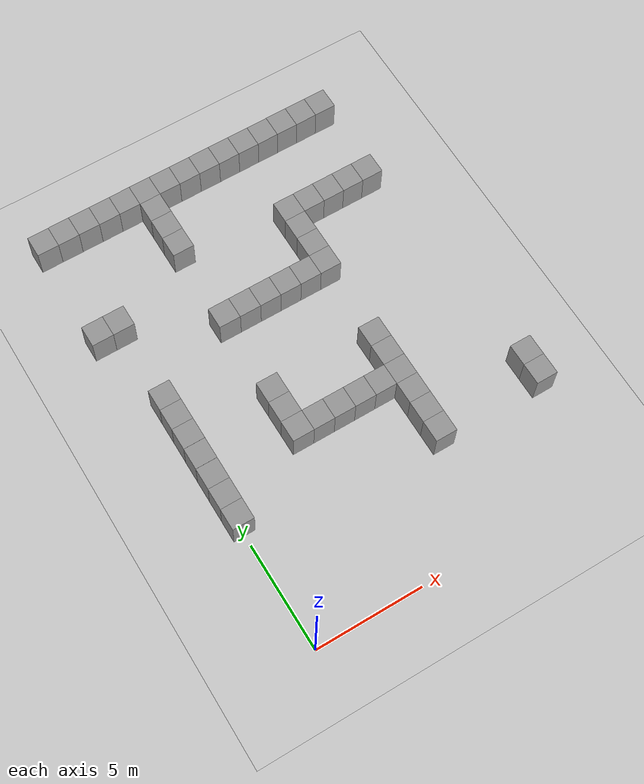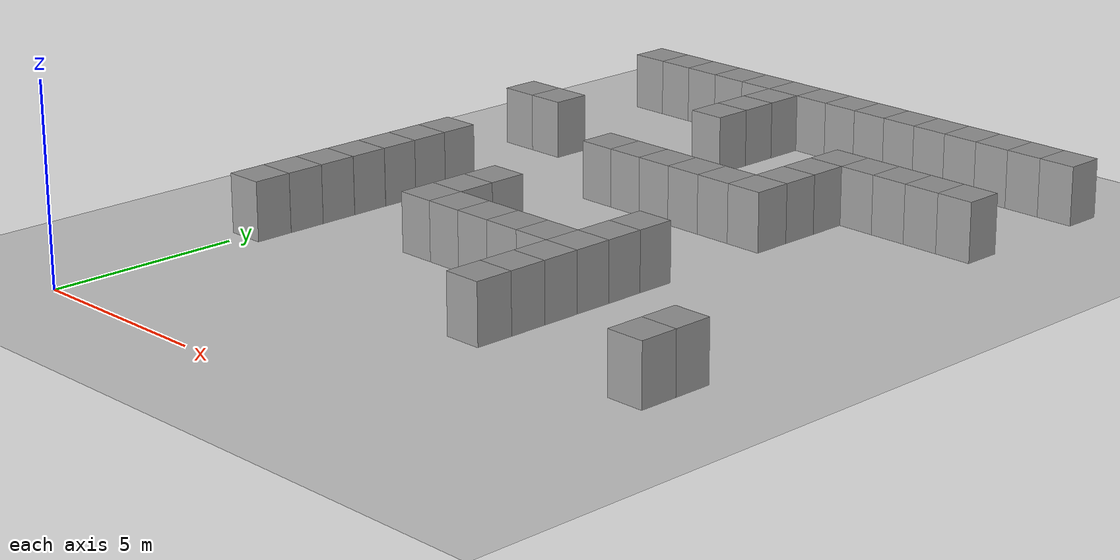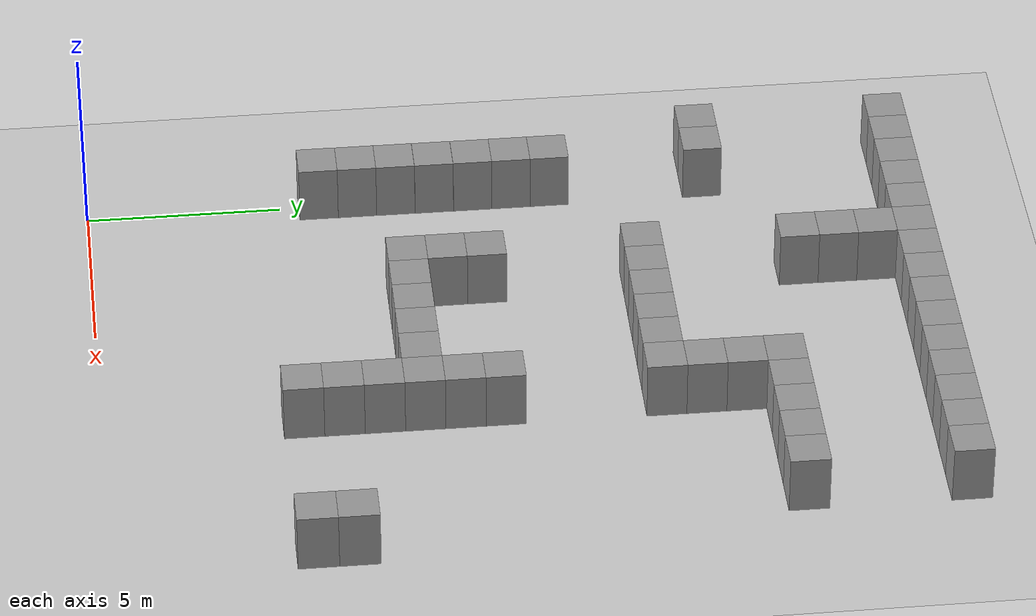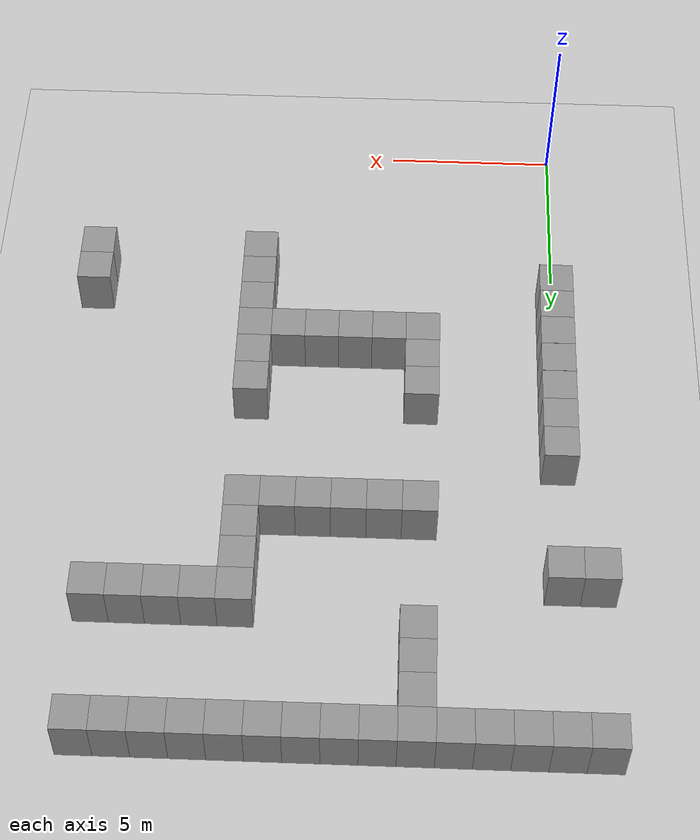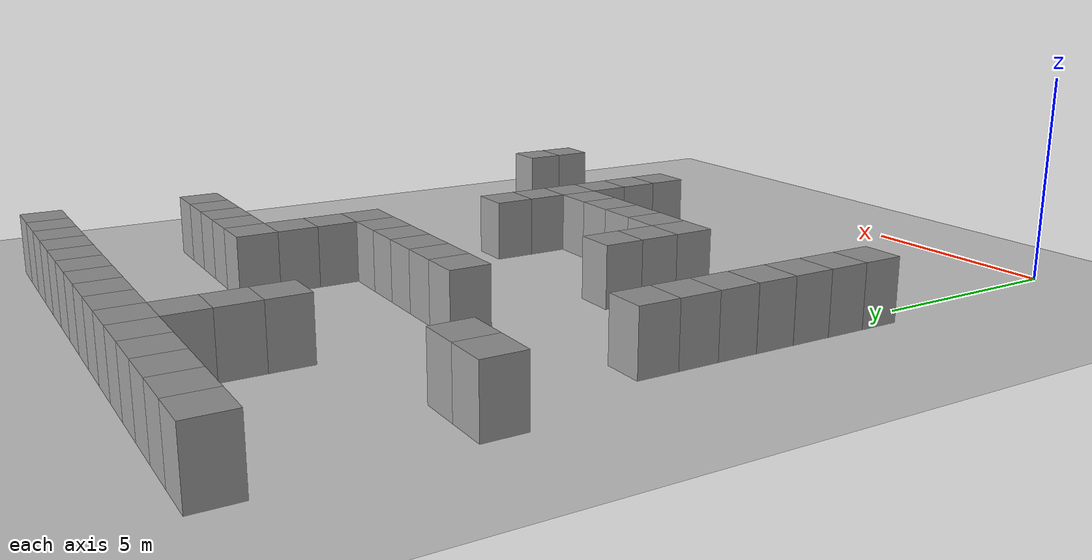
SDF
<sdf version="1.4">
 <world name="default">
  <model name="ground_plane">
   <static>1</static>
   <link name="link">
    <collision name="collision">
     <geometry><plane><normal>0 0 1</normal><size>100 100</size></plane></geometry>
     <surface><friction><ode><mu>100</mu><mu2>50</mu2></ode></friction></surface>
    </collision>
    <visual name="visual">
     <cast_shadows>0</cast_shadows>
     <geometry><plane><normal>0 0 1</normal><size>100 100</size></plane></geometry>
     <material>
      <script><uri>file://media/materials/scripts/gazebo.material</uri><name>Gazebo/Grey</name></script>
     </material>
    </visual>
    <velocity_decay><linear>0</linear><angular>0</angular></velocity_decay>
   </link>
  </model>
  <model name="unit_box_33">
   <pose>9 5 0.5 0 0 -7e-06</pose>
   <static>1</static>
   <link name="link">
    <inertial>
     <mass>1</mass>
     <inertia><ixx>1</ixx><ixy>0</ixy><ixz>0</ixz><iyy>1</iyy><iyz>0</iyz><izz>1</izz></inertia>
    </inertial>
    <collision name="collision"><geometry><box><size>1 1 2</size></box></geometry></collision>
    <visual name="visual">
     <geometry><box><size>1 1 2</size></box></geometry>
     <material>
      <script><uri>file://media/materials/scripts/gazebo.material</uri><name>Gazebo/Grey</name></script>
     </material>
    </visual>
    <velocity_decay><linear>0</linear><angular>0</angular></velocity_decay>
   </link>
   <static>0</static>
  </model>
  <model name="unit_box_34">
   <pose>9 6 0.5 0 0 -6e-06</pose>
   <static>1</static>
   <link name="link">
    <inertial>
     <mass>1</mass>
     <inertia><ixx>1</ixx><ixy>0</ixy><ixz>0</ixz><iyy>1</iyy><iyz>0</iyz><izz>1</izz></inertia>
    </inertial>
    <collision name="collision"><geometry><box><size>1 1 2</size></box></geometry></collision>
    <visual name="visual">
     <geometry><box><size>1 1 2</size></box></geometry>
     <material>
      <script><uri>file://media/materials/scripts/gazebo.material</uri><name>Gazebo/Grey</name></script>
     </material>
    </visual>
    <velocity_decay><linear>0</linear><angular>0</angular></velocity_decay>
   </link>
   <static>0</static>
  </model>
  <model name="unit_box_38">
   <pose>9.00001 7 0.5 0 0 -3e-06</pose>
   <static>1</static>
   <link name="link">
    <inertial>
     <mass>1</mass>
     <inertia><ixx>1</ixx><ixy>0</ixy><ixz>0</ixz><iyy>1</iyy><iyz>0</iyz><izz>1</izz></inertia>
    </inertial>
    <collision name="collision"><geometry><box><size>1 1 2</size></box></geometry></collision>
    <visual name="visual">
     <geometry><box><size>1 1 2</size></box></geometry>
     <material>
      <script><uri>file://media/materials/scripts/gazebo.material</uri><name>Gazebo/Grey</name></script>
     </material>
    </visual>
    <velocity_decay><linear>0</linear><angular>0</angular></velocity_decay>
   </link>
   <static>0</static>
  </model>
  <model name="unit_box_39">
   <pose>9 8.00001 0.5 0 0 -1e-06</pose>
   <static>1</static>
   <link name="link">
    <inertial>
     <mass>1</mass>
     <inertia><ixx>1</ixx><ixy>0</ixy><ixz>0</ixz><iyy>1</iyy><iyz>0</iyz><izz>1</izz></inertia>
    </inertial>
    <collision name="collision"><geometry><box><size>1 1 2</size></box></geometry></collision>
    <visual name="visual">
     <geometry><box><size>1 1 2</size></box></geometry>
     <material>
      <script><uri>file://media/materials/scripts/gazebo.material</uri><name>Gazebo/Grey</name></script>
     </material>
    </visual>
    <velocity_decay><linear>0</linear><angular>0</angular></velocity_decay>
   </link>
   <static>0</static>
  </model>
  <model name="unit_box_51">
   <pose>8 7.99999 0.5 0 -0 2e-06</pose>
   <static>1</static>
   <link name="link">
    <inertial>
     <mass>1</mass>
     <inertia><ixx>1</ixx><ixy>0</ixy><ixz>0</ixz><iyy>1</iyy><iyz>0</iyz><izz>1</izz></inertia>
    </inertial>
    <collision name="collision"><geometry><box><size>1 1 2</size></box></geometry></collision>
    <visual name="visual">
     <geometry><box><size>1 1 2</size></box></geometry>
     <material>
      <script><uri>file://media/materials/scripts/gazebo.material</uri><name>Gazebo/Grey</name></script>
     </material>
    </visual>
    <velocity_decay><linear>0</linear><angular>0</angular></velocity_decay>
   </link>
   <static>0</static>
  </model>
  <model name="unit_box_52">
   <pose>7 8.00001 0.5 0 -0 1e-06</pose>
   <static>1</static>
   <link name="link">
    <inertial>
     <mass>1</mass>
     <inertia><ixx>1</ixx><ixy>0</ixy><ixz>0</ixz><iyy>1</iyy><iyz>0</iyz><izz>1</izz></inertia>
    </inertial>
    <collision name="collision"><geometry><box><size>1 1 2</size></box></geometry></collision>
    <visual name="visual">
     <geometry><box><size>1 1 2</size></box></geometry>
     <material>
      <script><uri>file://media/materials/scripts/gazebo.material</uri><name>Gazebo/Grey</name></script>
     </material>
    </visual>
    <velocity_decay><linear>0</linear><angular>0</angular></velocity_decay>
   </link>
   <static>0</static>
  </model>
  <model name="unit_box_53">
   <pose>6 8 0.5 0 0 -3e-06</pose>
   <static>1</static>
   <link name="link">
    <inertial>
     <mass>1</mass>
     <inertia><ixx>1</ixx><ixy>0</ixy><ixz>0</ixz><iyy>1</iyy><iyz>0</iyz><izz>1</izz></inertia>
    </inertial>
    <collision name="collision"><geometry><box><size>1 1 2</size></box></geometry></collision>
    <visual name="visual">
     <geometry><box><size>1 1 2</size></box></geometry>
     <material>
      <script><uri>file://media/materials/scripts/gazebo.material</uri><name>Gazebo/Grey</name></script>
     </material>
    </visual>
    <velocity_decay><linear>0</linear><angular>0</angular></velocity_decay>
   </link>
   <static>0</static>
  </model>
  <model name="unit_box_54">
   <pose>5 8 0.5 0 0 -1e-06</pose>
   <static>1</static>
   <link name="link">
    <inertial>
     <mass>1</mass>
     <inertia><ixx>1</ixx><ixy>0</ixy><ixz>0</ixz><iyy>1</iyy><iyz>0</iyz><izz>1</izz></inertia>
    </inertial>
    <collision name="collision"><geometry><box><size>1 1 2</size></box></geometry></collision>
    <visual name="visual">
     <geometry><box><size>1 1 2</size></box></geometry>
     <material>
      <script><uri>file://media/materials/scripts/gazebo.material</uri><name>Gazebo/Grey</name></script>
     </material>
    </visual>
    <velocity_decay><linear>0</linear><angular>0</angular></velocity_decay>
   </link>
   <static>0</static>
  </model>
  <model name="unit_box_55">
   <pose>9 9.00001 0.5 0 0 -1e-06</pose>
   <static>1</static>
   <link name="link">
    <inertial>
     <mass>1</mass>
     <inertia><ixx>1</ixx><ixy>0</ixy><ixz>0</ixz><iyy>1</iyy><iyz>0</iyz><izz>1</izz></inertia>
    </inertial>
    <collision name="collision"><geometry><box><size>1 1 2</size></box></geometry></collision>
    <visual name="visual">
     <geometry><box><size>1 1 2</size></box></geometry>
     <material>
      <script><uri>file://media/materials/scripts/gazebo.material</uri><name>Gazebo/Grey</name></script>
     </material>
    </visual>
    <velocity_decay><linear>0</linear><angular>0</angular></velocity_decay>
   </link>
   <static>0</static>
  </model>
  <model name="unit_box_56">
   <pose>9 10 0.5 0 0 -2e-06</pose>
   <static>1</static>
   <link name="link">
    <inertial>
     <mass>1</mass>
     <inertia><ixx>1</ixx><ixy>0</ixy><ixz>0</ixz><iyy>1</iyy><iyz>0</iyz><izz>1</izz></inertia>
    </inertial>
    <collision name="collision"><geometry><box><size>1 1 2</size></box></geometry></collision>
    <visual name="visual">
     <geometry><box><size>1 1 2</size></box></geometry>
     <material>
      <script><uri>file://media/materials/scripts/gazebo.material</uri><name>Gazebo/Grey</name></script>
     </material>
    </visual>
    <velocity_decay><linear>0</linear><angular>0</angular></velocity_decay>
   </link>
   <static>0</static>
  </model>
  <model name="unit_box_57">
   <pose>-0.014979 5.99334 0.5 0 0 -0.00033</pose>
   <static>1</static>
   <link name="link">
    <inertial>
     <mass>1</mass>
     <inertia><ixx>1</ixx><ixy>0</ixy><ixz>0</ixz><iyy>1</iyy><iyz>0</iyz><izz>1</izz></inertia>
    </inertial>
    <collision name="collision"><geometry><box><size>1 1 2</size></box></geometry></collision>
    <visual name="visual">
     <geometry><box><size>1 1 2</size></box></geometry>
     <material>
      <script><uri>file://media/materials/scripts/gazebo.material</uri><name>Gazebo/Grey</name></script>
     </material>
    </visual>
    <velocity_decay><linear>0</linear><angular>0</angular></velocity_decay>
   </link>
   <static>0</static>
  </model>
  <model name="unit_box_58">
   <pose>-0.010958 6.99335 0.5 0 0 -0.00031</pose>
   <static>1</static>
   <link name="link">
    <inertial>
     <mass>1</mass>
     <inertia><ixx>1</ixx><ixy>0</ixy><ixz>0</ixz><iyy>1</iyy><iyz>0</iyz><izz>1</izz></inertia>
    </inertial>
    <collision name="collision"><geometry><box><size>1 1 2</size></box></geometry></collision>
    <visual name="visual">
     <geometry><box><size>1 1 2</size></box></geometry>
     <material>
      <script><uri>file://media/materials/scripts/gazebo.material</uri><name>Gazebo/Grey</name></script>
     </material>
    </visual>
    <velocity_decay><linear>0</linear><angular>0</angular></velocity_decay>
   </link>
   <static>0</static>
  </model>
  <model name="unit_box_59">
   <pose>-0.007655 7.99337 0.5 0 0 -0.000262</pose>
   <static>1</static>
   <link name="link">
    <inertial>
     <mass>1</mass>
     <inertia><ixx>1</ixx><ixy>0</ixy><ixz>0</ixz><iyy>1</iyy><iyz>0</iyz><izz>1</izz></inertia>
    </inertial>
    <collision name="collision"><geometry><box><size>1 1 2</size></box></geometry></collision>
    <visual name="visual">
     <geometry><box><size>1 1 2</size></box></geometry>
     <material>
      <script><uri>file://media/materials/scripts/gazebo.material</uri><name>Gazebo/Grey</name></script>
     </material>
    </visual>
    <velocity_decay><linear>0</linear><angular>0</angular></velocity_decay>
   </link>
   <static>0</static>
  </model>
  <model name="unit_box_60">
   <pose>-0.004062 8.99709 0.5 0 0 -8.2e-05</pose>
   <static>1</static>
   <link name="link">
    <inertial>
     <mass>1</mass>
     <inertia><ixx>1</ixx><ixy>0</ixy><ixz>0</ixz><iyy>1</iyy><iyz>0</iyz><izz>1</izz></inertia>
    </inertial>
    <collision name="collision"><geometry><box><size>1 1 2</size></box></geometry></collision>
    <visual name="visual">
     <geometry><box><size>1 1 2</size></box></geometry>
     <material>
      <script><uri>file://media/materials/scripts/gazebo.material</uri><name>Gazebo/Grey</name></script>
     </material>
    </visual>
    <velocity_decay><linear>0</linear><angular>0</angular></velocity_decay>
   </link>
   <static>0</static>
  </model>
  <model name="unit_box_62">
   <pose>0 10 0.5 0 -0 0</pose>
   <static>1</static>
   <link name="link">
    <inertial>
     <mass>1</mass>
     <inertia><ixx>1</ixx><ixy>0</ixy><ixz>0</ixz><iyy>1</iyy><iyz>0</iyz><izz>1</izz></inertia>
    </inertial>
    <collision name="collision"><geometry><box><size>1 1 2</size></box></geometry></collision>
    <visual name="visual">
     <geometry><box><size>1 1 2</size></box></geometry>
     <material>
      <script><uri>file://media/materials/scripts/gazebo.material</uri><name>Gazebo/Grey</name></script>
     </material>
    </visual>
    <velocity_decay><linear>0</linear><angular>0</angular></velocity_decay>
   </link>
   <static>0</static>
  </model>
  <model name="unit_box_63">
   <pose>0 11 0.5 0 -0 0</pose>
   <static>1</static>
   <link name="link">
    <inertial>
     <mass>1</mass>
     <inertia><ixx>1</ixx><ixy>0</ixy><ixz>0</ixz><iyy>1</iyy><iyz>0</iyz><izz>1</izz></inertia>
    </inertial>
    <collision name="collision"><geometry><box><size>1 1 2</size></box></geometry></collision>
    <visual name="visual">
     <geometry><box><size>1 1 2</size></box></geometry>
     <material>
      <script><uri>file://media/materials/scripts/gazebo.material</uri><name>Gazebo/Grey</name></script>
     </material>
    </visual>
    <velocity_decay><linear>0</linear><angular>0</angular></velocity_decay>
   </link>
   <static>0</static>
  </model>
  <model name="unit_box_64">
   <pose>0 12 0.5 0 -0 0</pose>
   <static>1</static>
   <link name="link">
    <inertial>
     <mass>1</mass>
     <inertia><ixx>1</ixx><ixy>0</ixy><ixz>0</ixz><iyy>1</iyy><iyz>0</iyz><izz>1</izz></inertia>
    </inertial>
    <collision name="collision"><geometry><box><size>1 1 2</size></box></geometry></collision>
    <visual name="visual">
     <geometry><box><size>1 1 2</size></box></geometry>
     <material>
      <script><uri>file://media/materials/scripts/gazebo.material</uri><name>Gazebo/Grey</name></script>
     </material>
    </visual>
    <velocity_decay><linear>0</linear><angular>0</angular></velocity_decay>
   </link>
   <static>0</static>
  </model>
  <model name="unit_box_65">
   <pose>4 14 0.5 0 -0 0</pose>
   <static>1</static>
   <link name="link">
    <inertial>
     <mass>1</mass>
     <inertia><ixx>1</ixx><ixy>0</ixy><ixz>0</ixz><iyy>1</iyy><iyz>0</iyz><izz>1</izz></inertia>
    </inertial>
    <collision name="collision"><geometry><box><size>1 1 2</size></box></geometry></collision>
    <visual name="visual">
     <geometry><box><size>1 1 2</size></box></geometry>
     <material>
      <script><uri>file://media/materials/scripts/gazebo.material</uri><name>Gazebo/Grey</name></script>
     </material>
    </visual>
    <velocity_decay><linear>0</linear><angular>0</angular></velocity_decay>
   </link>
   <static>0</static>
  </model>
  <model name="unit_box_66">
   <pose>5 14 0.5 0 -0 0</pose>
   <static>1</static>
   <link name="link">
    <inertial>
     <mass>1</mass>
     <inertia><ixx>1</ixx><ixy>0</ixy><ixz>0</ixz><iyy>1</iyy><iyz>0</iyz><izz>1</izz></inertia>
    </inertial>
    <collision name="collision"><geometry><box><size>1 1 2</size></box></geometry></collision>
    <visual name="visual">
     <geometry><box><size>1 1 2</size></box></geometry>
     <material>
      <script><uri>file://media/materials/scripts/gazebo.material</uri><name>Gazebo/Grey</name></script>
     </material>
    </visual>
    <velocity_decay><linear>0</linear><angular>0</angular></velocity_decay>
   </link>
   <static>0</static>
  </model>
  <model name="unit_box_84">
   <pose>-0.999991 16 0.5 0 -0 1.1e-05</pose>
   <static>1</static>
   <link name="link">
    <inertial>
     <mass>1</mass>
     <inertia><ixx>1</ixx><ixy>0</ixy><ixz>0</ixz><iyy>1</iyy><iyz>0</iyz><izz>1</izz></inertia>
    </inertial>
    <collision name="collision"><geometry><box><size>1 1 2</size></box></geometry></collision>
    <visual name="visual">
     <geometry><box><size>1 1 2</size></box></geometry>
     <material>
      <script><uri>file://media/materials/scripts/gazebo.material</uri><name>Gazebo/Grey</name></script>
     </material>
    </visual>
    <velocity_decay><linear>0</linear><angular>0</angular></velocity_decay>
   </link>
   <static>0</static>
  </model>
  <model name="unit_box_85">
   <pose>1.2e-05 16 0.5 0 -0 1e-05</pose>
   <static>1</static>
   <link name="link">
    <inertial>
     <mass>1</mass>
     <inertia><ixx>1</ixx><ixy>0</ixy><ixz>0</ixz><iyy>1</iyy><iyz>0</iyz><izz>1</izz></inertia>
    </inertial>
    <collision name="collision"><geometry><box><size>1 1 2</size></box></geometry></collision>
    <visual name="visual">
     <geometry><box><size>1 1 2</size></box></geometry>
     <material>
      <script><uri>file://media/materials/scripts/gazebo.material</uri><name>Gazebo/Grey</name></script>
     </material>
    </visual>
    <velocity_decay><linear>0</linear><angular>0</angular></velocity_decay>
   </link>
   <static>0</static>
  </model>
  <model name="unit_box_86">
   <pose>6 14 0.5 0 -0 1e-06</pose>
   <static>1</static>
   <link name="link">
    <inertial>
     <mass>1</mass>
     <inertia><ixx>1</ixx><ixy>0</ixy><ixz>0</ixz><iyy>1</iyy><iyz>0</iyz><izz>1</izz></inertia>
    </inertial>
    <collision name="collision"><geometry><box><size>1 1 2</size></box></geometry></collision>
    <visual name="visual">
     <geometry><box><size>1 1 2</size></box></geometry>
     <material>
      <script><uri>file://media/materials/scripts/gazebo.material</uri><name>Gazebo/Grey</name></script>
     </material>
    </visual>
    <velocity_decay><linear>0</linear><angular>0</angular></velocity_decay>
   </link>
   <static>0</static>
  </model>
  <model name="unit_box_87">
   <pose>7 14 0.5 0 -0 1e-06</pose>
   <static>1</static>
   <link name="link">
    <inertial>
     <mass>1</mass>
     <inertia><ixx>1</ixx><ixy>0</ixy><ixz>0</ixz><iyy>1</iyy><iyz>0</iyz><izz>1</izz></inertia>
    </inertial>
    <collision name="collision"><geometry><box><size>1 1 2</size></box></geometry></collision>
    <visual name="visual">
     <geometry><box><size>1 1 2</size></box></geometry>
     <material>
      <script><uri>file://media/materials/scripts/gazebo.material</uri><name>Gazebo/Grey</name></script>
     </material>
    </visual>
    <velocity_decay><linear>0</linear><angular>0</angular></velocity_decay>
   </link>
   <static>0</static>
  </model>
  <model name="unit_box_88">
   <pose>8 14 0.5 0 -0 0</pose>
   <static>1</static>
   <link name="link">
    <inertial>
     <mass>1</mass>
     <inertia><ixx>1</ixx><ixy>0</ixy><ixz>0</ixz><iyy>1</iyy><iyz>0</iyz><izz>1</izz></inertia>
    </inertial>
    <collision name="collision"><geometry><box><size>1 1 2</size></box></geometry></collision>
    <visual name="visual">
     <geometry><box><size>1 1 2</size></box></geometry>
     <material>
      <script><uri>file://media/materials/scripts/gazebo.material</uri><name>Gazebo/Grey</name></script>
     </material>
    </visual>
    <velocity_decay><linear>0</linear><angular>0</angular></velocity_decay>
   </link>
   <static>0</static>
  </model>
  <model name="unit_box_89">
   <pose>9 14 0.5 0 -0 0</pose>
   <static>1</static>
   <link name="link">
    <inertial>
     <mass>1</mass>
     <inertia><ixx>1</ixx><ixy>0</ixy><ixz>0</ixz><iyy>1</iyy><iyz>0</iyz><izz>1</izz></inertia>
    </inertial>
    <collision name="collision"><geometry><box><size>1 1 2</size></box></geometry></collision>
    <visual name="visual">
     <geometry><box><size>1 1 2</size></box></geometry>
     <material>
      <script><uri>file://media/materials/scripts/gazebo.material</uri><name>Gazebo/Grey</name></script>
     </material>
    </visual>
    <velocity_decay><linear>0</linear><angular>0</angular></velocity_decay>
   </link>
   <static>0</static>
  </model>
  <model name="unit_box_90">
   <pose>3.99999 8 0.5 0 -0 0</pose>
   <static>1</static>
   <link name="link">
    <inertial>
     <mass>1</mass>
     <inertia><ixx>1</ixx><ixy>0</ixy><ixz>0</ixz><iyy>1</iyy><iyz>0</iyz><izz>1</izz></inertia>
    </inertial>
    <collision name="collision"><geometry><box><size>1 1 2</size></box></geometry></collision>
    <visual name="visual">
     <geometry><box><size>1 1 2</size></box></geometry>
     <material>
      <script><uri>file://media/materials/scripts/gazebo.material</uri><name>Gazebo/Grey</name></script>
     </material>
    </visual>
    <velocity_decay><linear>0</linear><angular>0</angular></velocity_decay>
   </link>
   <static>0</static>
  </model>
  <model name="unit_box_91">
   <pose>3.99999 9 0.5 0 -0 1e-06</pose>
   <static>1</static>
   <link name="link">
    <inertial>
     <mass>1</mass>
     <inertia><ixx>1</ixx><ixy>0</ixy><ixz>0</ixz><iyy>1</iyy><iyz>0</iyz><izz>1</izz></inertia>
    </inertial>
    <collision name="collision"><geometry><box><size>1 1 2</size></box></geometry></collision>
    <visual name="visual">
     <geometry><box><size>1 1 2</size></box></geometry>
     <material>
      <script><uri>file://media/materials/scripts/gazebo.material</uri><name>Gazebo/Grey</name></script>
     </material>
    </visual>
    <velocity_decay><linear>0</linear><angular>0</angular></velocity_decay>
   </link>
   <static>0</static>
  </model>
  <model name="unit_box_92">
   <pose>4 10 0.5 0 -0 1e-06</pose>
   <static>1</static>
   <link name="link">
    <inertial>
     <mass>1</mass>
     <inertia><ixx>1</ixx><ixy>0</ixy><ixz>0</ixz><iyy>1</iyy><iyz>0</iyz><izz>1</izz></inertia>
    </inertial>
    <collision name="collision"><geometry><box><size>1 1 2</size></box></geometry></collision>
    <visual name="visual">
     <geometry><box><size>1 1 2</size></box></geometry>
     <material>
      <script><uri>file://media/materials/scripts/gazebo.material</uri><name>Gazebo/Grey</name></script>
     </material>
    </visual>
    <velocity_decay><linear>0</linear><angular>0</angular></velocity_decay>
   </link>
   <static>0</static>
  </model>
  <model name="unit_box_93">
   <pose>9.00001 15 0.5 0 0 -4e-06</pose>
   <static>1</static>
   <link name="link">
    <inertial>
     <mass>1</mass>
     <inertia><ixx>1</ixx><ixy>0</ixy><ixz>0</ixz><iyy>1</iyy><iyz>0</iyz><izz>1</izz></inertia>
    </inertial>
    <collision name="collision"><geometry><box><size>1 1 2</size></box></geometry></collision>
    <visual name="visual">
     <geometry><box><size>1 1 2</size></box></geometry>
     <material>
      <script><uri>file://media/materials/scripts/gazebo.material</uri><name>Gazebo/Grey</name></script>
     </material>
    </visual>
    <velocity_decay><linear>0</linear><angular>0</angular></velocity_decay>
   </link>
   <static>0</static>
  </model>
  <model name="unit_box_94">
   <pose>9 16 0.5 0 0 -4e-06</pose>
   <static>1</static>
   <link name="link">
    <inertial>
     <mass>1</mass>
     <inertia><ixx>1</ixx><ixy>0</ixy><ixz>0</ixz><iyy>1</iyy><iyz>0</iyz><izz>1</izz></inertia>
    </inertial>
    <collision name="collision"><geometry><box><size>1 1 2</size></box></geometry></collision>
    <visual name="visual">
     <geometry><box><size>1 1 2</size></box></geometry>
     <material>
      <script><uri>file://media/materials/scripts/gazebo.material</uri><name>Gazebo/Grey</name></script>
     </material>
    </visual>
    <velocity_decay><linear>0</linear><angular>0</angular></velocity_decay>
   </link>
   <static>0</static>
  </model>
  <model name="unit_box_95">
   <pose>9 17 0.5 0 0 -3e-06</pose>
   <static>1</static>
   <link name="link">
    <inertial>
     <mass>1</mass>
     <inertia><ixx>1</ixx><ixy>0</ixy><ixz>0</ixz><iyy>1</iyy><iyz>0</iyz><izz>1</izz></inertia>
    </inertial>
    <collision name="collision"><geometry><box><size>1 1 2</size></box></geometry></collision>
    <visual name="visual">
     <geometry><box><size>1 1 2</size></box></geometry>
     <material>
      <script><uri>file://media/materials/scripts/gazebo.material</uri><name>Gazebo/Grey</name></script>
     </material>
    </visual>
    <velocity_decay><linear>0</linear><angular>0</angular></velocity_decay>
   </link>
   <static>0</static>
  </model>
  <model name="unit_box_102">
   <pose>-1.00001 21 0.5 0 -0 0</pose>
   <static>1</static>
   <link name="link">
    <inertial>
     <mass>1</mass>
     <inertia><ixx>1</ixx><ixy>0</ixy><ixz>0</ixz><iyy>1</iyy><iyz>0</iyz><izz>1</izz></inertia>
    </inertial>
    <collision name="collision"><geometry><box><size>1 1 2</size></box></geometry></collision>
    <visual name="visual">
     <geometry><box><size>1 1 2</size></box></geometry>
     <material>
      <script><uri>file://media/materials/scripts/gazebo.material</uri><name>Gazebo/Grey</name></script>
     </material>
    </visual>
    <velocity_decay><linear>0</linear><angular>0</angular></velocity_decay>
   </link>
   <static>0</static>
  </model>
  <model name="unit_box_103">
   <pose>-1e-05 21 0.5 0 -0 0</pose>
   <static>1</static>
   <link name="link">
    <inertial>
     <mass>1</mass>
     <inertia><ixx>1</ixx><ixy>0</ixy><ixz>0</ixz><iyy>1</iyy><iyz>0</iyz><izz>1</izz></inertia>
    </inertial>
    <collision name="collision"><geometry><box><size>1 1 2</size></box></geometry></collision>
    <visual name="visual">
     <geometry><box><size>1 1 2</size></box></geometry>
     <material>
      <script><uri>file://media/materials/scripts/gazebo.material</uri><name>Gazebo/Grey</name></script>
     </material>
    </visual>
    <velocity_decay><linear>0</linear><angular>0</angular></velocity_decay>
   </link>
   <static>0</static>
  </model>
  <model name="unit_box_104">
   <pose>0.999991 21 0.5 0 -0 0</pose>
   <static>1</static>
   <link name="link">
    <inertial>
     <mass>1</mass>
     <inertia><ixx>1</ixx><ixy>0</ixy><ixz>0</ixz><iyy>1</iyy><iyz>0</iyz><izz>1</izz></inertia>
    </inertial>
    <collision name="collision"><geometry><box><size>1 1 2</size></box></geometry></collision>
    <visual name="visual">
     <geometry><box><size>1 1 2</size></box></geometry>
     <material>
      <script><uri>file://media/materials/scripts/gazebo.material</uri><name>Gazebo/Grey</name></script>
     </material>
    </visual>
    <velocity_decay><linear>0</linear><angular>0</angular></velocity_decay>
   </link>
   <static>0</static>
  </model>
  <model name="unit_box_105">
   <pose>1.99999 21 0.5 0 -0 0</pose>
   <static>1</static>
   <link name="link">
    <inertial>
     <mass>1</mass>
     <inertia><ixx>1</ixx><ixy>0</ixy><ixz>0</ixz><iyy>1</iyy><iyz>0</iyz><izz>1</izz></inertia>
    </inertial>
    <collision name="collision"><geometry><box><size>1 1 2</size></box></geometry></collision>
    <visual name="visual">
     <geometry><box><size>1 1 2</size></box></geometry>
     <material>
      <script><uri>file://media/materials/scripts/gazebo.material</uri><name>Gazebo/Grey</name></script>
     </material>
    </visual>
    <velocity_decay><linear>0</linear><angular>0</angular></velocity_decay>
   </link>
   <static>0</static>
  </model>
  <model name="unit_box_106">
   <pose>2.99999 21 0.5 0 -0 1e-06</pose>
   <static>1</static>
   <link name="link">
    <inertial>
     <mass>1</mass>
     <inertia><ixx>1</ixx><ixy>0</ixy><ixz>0</ixz><iyy>1</iyy><iyz>0</iyz><izz>1</izz></inertia>
    </inertial>
    <collision name="collision"><geometry><box><size>1 1 2</size></box></geometry></collision>
    <visual name="visual">
     <geometry><box><size>1 1 2</size></box></geometry>
     <material>
      <script><uri>file://media/materials/scripts/gazebo.material</uri><name>Gazebo/Grey</name></script>
     </material>
    </visual>
    <velocity_decay><linear>0</linear><angular>0</angular></velocity_decay>
   </link>
   <static>0</static>
  </model>
  <model name="unit_box_107">
   <pose>3.99999 21 0.5 0 -0 2e-06</pose>
   <static>1</static>
   <link name="link">
    <inertial>
     <mass>1</mass>
     <inertia><ixx>1</ixx><ixy>0</ixy><ixz>0</ixz><iyy>1</iyy><iyz>0</iyz><izz>1</izz></inertia>
    </inertial>
    <collision name="collision"><geometry><box><size>1 1 2</size></box></geometry></collision>
    <visual name="visual">
     <geometry><box><size>1 1 2</size></box></geometry>
     <material>
      <script><uri>file://media/materials/scripts/gazebo.material</uri><name>Gazebo/Grey</name></script>
     </material>
    </visual>
    <velocity_decay><linear>0</linear><angular>0</angular></velocity_decay>
   </link>
   <static>0</static>
  </model>
  <model name="unit_box_108">
   <pose>5 21 0.5 0 -0 3e-06</pose>
   <static>1</static>
   <link name="link">
    <inertial>
     <mass>1</mass>
     <inertia><ixx>1</ixx><ixy>0</ixy><ixz>0</ixz><iyy>1</iyy><iyz>0</iyz><izz>1</izz></inertia>
    </inertial>
    <collision name="collision"><geometry><box><size>1 1 2</size></box></geometry></collision>
    <visual name="visual">
     <geometry><box><size>1 1 2</size></box></geometry>
     <material>
      <script><uri>file://media/materials/scripts/gazebo.material</uri><name>Gazebo/Grey</name></script>
     </material>
    </visual>
    <velocity_decay><linear>0</linear><angular>0</angular></velocity_decay>
   </link>
   <static>0</static>
  </model>
  <model name="unit_box_109">
   <pose>6 20.9999 0.5 0 -0 3e-06</pose>
   <static>1</static>
   <link name="link">
    <inertial>
     <mass>1</mass>
     <inertia><ixx>1</ixx><ixy>0</ixy><ixz>0</ixz><iyy>1</iyy><iyz>0</iyz><izz>1</izz></inertia>
    </inertial>
    <collision name="collision"><geometry><box><size>1 1 2</size></box></geometry></collision>
    <visual name="visual">
     <geometry><box><size>1 1 2</size></box></geometry>
     <material>
      <script><uri>file://media/materials/scripts/gazebo.material</uri><name>Gazebo/Grey</name></script>
     </material>
    </visual>
    <velocity_decay><linear>0</linear><angular>0</angular></velocity_decay>
   </link>
   <static>0</static>
  </model>
  <model name="unit_box_110">
   <pose>7 21 0.5 0 -0 4e-06</pose>
   <static>1</static>
   <link name="link">
    <inertial>
     <mass>1</mass>
     <inertia><ixx>1</ixx><ixy>0</ixy><ixz>0</ixz><iyy>1</iyy><iyz>0</iyz><izz>1</izz></inertia>
    </inertial>
    <collision name="collision"><geometry><box><size>1 1 2</size></box></geometry></collision>
    <visual name="visual">
     <geometry><box><size>1 1 2</size></box></geometry>
     <material>
      <script><uri>file://media/materials/scripts/gazebo.material</uri><name>Gazebo/Grey</name></script>
     </material>
    </visual>
    <velocity_decay><linear>0</linear><angular>0</angular></velocity_decay>
   </link>
   <static>0</static>
  </model>
  <model name="unit_box_111">
   <pose>8 21 0.5 0 -0 3e-06</pose>
   <static>1</static>
   <link name="link">
    <inertial>
     <mass>1</mass>
     <inertia><ixx>1</ixx><ixy>0</ixy><ixz>0</ixz><iyy>1</iyy><iyz>0</iyz><izz>1</izz></inertia>
    </inertial>
    <collision name="collision"><geometry><box><size>1 1 2</size></box></geometry></collision>
    <visual name="visual">
     <geometry><box><size>1 1 2</size></box></geometry>
     <material>
      <script><uri>file://media/materials/scripts/gazebo.material</uri><name>Gazebo/Grey</name></script>
     </material>
    </visual>
    <velocity_decay><linear>0</linear><angular>0</angular></velocity_decay>
   </link>
   <static>0</static>
  </model>
  <model name="unit_box_112">
   <pose>9 21 0.5 0 -0 3e-06</pose>
   <static>1</static>
   <link name="link">
    <inertial>
     <mass>1</mass>
     <inertia><ixx>1</ixx><ixy>0</ixy><ixz>0</ixz><iyy>1</iyy><iyz>0</iyz><izz>1</izz></inertia>
    </inertial>
    <collision name="collision"><geometry><box><size>1 1 2</size></box></geometry></collision>
    <visual name="visual">
     <geometry><box><size>1 1 2</size></box></geometry>
     <material>
      <script><uri>file://media/materials/scripts/gazebo.material</uri><name>Gazebo/Grey</name></script>
     </material>
    </visual>
    <velocity_decay><linear>0</linear><angular>0</angular></velocity_decay>
   </link>
   <static>0</static>
  </model>
  <model name="unit_box_113">
   <pose>10 21 0.5 0 -0 1e-06</pose>
   <static>1</static>
   <link name="link">
    <inertial>
     <mass>1</mass>
     <inertia><ixx>1</ixx><ixy>0</ixy><ixz>0</ixz><iyy>1</iyy><iyz>0</iyz><izz>1</izz></inertia>
    </inertial>
    <collision name="collision"><geometry><box><size>1 1 2</size></box></geometry></collision>
    <visual name="visual">
     <geometry><box><size>1 1 2</size></box></geometry>
     <material>
      <script><uri>file://media/materials/scripts/gazebo.material</uri><name>Gazebo/Grey</name></script>
     </material>
    </visual>
    <velocity_decay><linear>0</linear><angular>0</angular></velocity_decay>
   </link>
   <static>0</static>
  </model>
  <model name="unit_box_114">
   <pose>11 21 0.5 0 -0 1e-06</pose>
   <static>1</static>
   <link name="link">
    <inertial>
     <mass>1</mass>
     <inertia><ixx>1</ixx><ixy>0</ixy><ixz>0</ixz><iyy>1</iyy><iyz>0</iyz><izz>1</izz></inertia>
    </inertial>
    <collision name="collision"><geometry><box><size>1 1 2</size></box></geometry></collision>
    <visual name="visual">
     <geometry><box><size>1 1 2</size></box></geometry>
     <material>
      <script><uri>file://media/materials/scripts/gazebo.material</uri><name>Gazebo/Grey</name></script>
     </material>
    </visual>
    <velocity_decay><linear>0</linear><angular>0</angular></velocity_decay>
   </link>
   <static>0</static>
  </model>
  <model name="unit_box_115">
   <pose>12 21 0.5 0 0 -2e-06</pose>
   <static>1</static>
   <link name="link">
    <inertial>
     <mass>1</mass>
     <inertia><ixx>1</ixx><ixy>0</ixy><ixz>0</ixz><iyy>1</iyy><iyz>0</iyz><izz>1</izz></inertia>
    </inertial>
    <collision name="collision"><geometry><box><size>1 1 2</size></box></geometry></collision>
    <visual name="visual">
     <geometry><box><size>1 1 2</size></box></geometry>
     <material>
      <script><uri>file://media/materials/scripts/gazebo.material</uri><name>Gazebo/Grey</name></script>
     </material>
    </visual>
    <velocity_decay><linear>0</linear><angular>0</angular></velocity_decay>
   </link>
   <static>0</static>
  </model>
  <model name="unit_box_116">
   <pose>13 21 0.5 0 0 -2e-06</pose>
   <static>1</static>
   <link name="link">
    <inertial>
     <mass>1</mass>
     <inertia><ixx>1</ixx><ixy>0</ixy><ixz>0</ixz><iyy>1</iyy><iyz>0</iyz><izz>1</izz></inertia>
    </inertial>
    <collision name="collision"><geometry><box><size>1 1 2</size></box></geometry></collision>
    <visual name="visual">
     <geometry><box><size>1 1 2</size></box></geometry>
     <material>
      <script><uri>file://media/materials/scripts/gazebo.material</uri><name>Gazebo/Grey</name></script>
     </material>
    </visual>
    <velocity_decay><linear>0</linear><angular>0</angular></velocity_decay>
   </link>
   <static>0</static>
  </model>
  <model name="unit_box_117">
   <pose>10 17 0.5 0 0 -2e-06</pose>
   <static>1</static>
   <link name="link">
    <inertial>
     <mass>1</mass>
     <inertia><ixx>1</ixx><ixy>0</ixy><ixz>0</ixz><iyy>1</iyy><iyz>0</iyz><izz>1</izz></inertia>
    </inertial>
    <collision name="collision"><geometry><box><size>1 1 2</size></box></geometry></collision>
    <visual name="visual">
     <geometry><box><size>1 1 2</size></box></geometry>
     <material>
      <script><uri>file://media/materials/scripts/gazebo.material</uri><name>Gazebo/Grey</name></script>
     </material>
    </visual>
    <velocity_decay><linear>0</linear><angular>0</angular></velocity_decay>
   </link>
   <static>0</static>
  </model>
  <model name="unit_box_118">
   <pose>11 17 0.5 0 0 -1e-06</pose>
   <static>1</static>
   <link name="link">
    <inertial>
     <mass>1</mass>
     <inertia><ixx>1</ixx><ixy>0</ixy><ixz>0</ixz><iyy>1</iyy><iyz>0</iyz><izz>1</izz></inertia>
    </inertial>
    <collision name="collision"><geometry><box><size>1 1 2</size></box></geometry></collision>
    <visual name="visual">
     <geometry><box><size>1 1 2</size></box></geometry>
     <material>
      <script><uri>file://media/materials/scripts/gazebo.material</uri><name>Gazebo/Grey</name></script>
     </material>
    </visual>
    <velocity_decay><linear>0</linear><angular>0</angular></velocity_decay>
   </link>
   <static>0</static>
  </model>
  <model name="unit_box_119">
   <pose>12 17 0.5 0 0 -2e-06</pose>
   <static>1</static>
   <link name="link">
    <inertial>
     <mass>1</mass>
     <inertia><ixx>1</ixx><ixy>0</ixy><ixz>0</ixz><iyy>1</iyy><iyz>0</iyz><izz>1</izz></inertia>
    </inertial>
    <collision name="collision"><geometry><box><size>1 1 2</size></box></geometry></collision>
    <visual name="visual">
     <geometry><box><size>1 1 2</size></box></geometry>
     <material>
      <script><uri>file://media/materials/scripts/gazebo.material</uri><name>Gazebo/Grey</name></script>
     </material>
    </visual>
    <velocity_decay><linear>0</linear><angular>0</angular></velocity_decay>
   </link>
   <static>0</static>
  </model>
  <model name="unit_box_120">
   <pose>13 17 0.5 0 0 -2e-06</pose>
   <static>1</static>
   <link name="link">
    <inertial>
     <mass>1</mass>
     <inertia><ixx>1</ixx><ixy>0</ixy><ixz>0</ixz><iyy>1</iyy><iyz>0</iyz><izz>1</izz></inertia>
    </inertial>
    <collision name="collision"><geometry><box><size>1 1 2</size></box></geometry></collision>
    <visual name="visual">
     <geometry><box><size>1 1 2</size></box></geometry>
     <material>
      <script><uri>file://media/materials/scripts/gazebo.material</uri><name>Gazebo/Grey</name></script>
     </material>
    </visual>
    <velocity_decay><linear>0</linear><angular>0</angular></velocity_decay>
   </link>
   <static>0</static>
  </model>
  <model name="unit_box_126">
   <pose>4 20 0.5 0 -0 3e-06</pose>
   <static>1</static>
   <link name="link">
    <inertial>
     <mass>1</mass>
     <inertia><ixx>1</ixx><ixy>0</ixy><ixz>0</ixz><iyy>1</iyy><iyz>0</iyz><izz>1</izz></inertia>
    </inertial>
    <collision name="collision"><geometry><box><size>1 1 2</size></box></geometry></collision>
    <visual name="visual">
     <geometry><box><size>1 1 2</size></box></geometry>
     <material>
      <script><uri>file://media/materials/scripts/gazebo.material</uri><name>Gazebo/Grey</name></script>
     </material>
    </visual>
    <velocity_decay><linear>0</linear><angular>0</angular></velocity_decay>
   </link>
   <static>0</static>
  </model>
  <model name="unit_box_127">
   <pose>4 19 0.5 0 -0 3e-06</pose>
   <static>1</static>
   <link name="link">
    <inertial>
     <mass>1</mass>
     <inertia><ixx>1</ixx><ixy>0</ixy><ixz>0</ixz><iyy>1</iyy><iyz>0</iyz><izz>1</izz></inertia>
    </inertial>
    <collision name="collision"><geometry><box><size>1 1 2</size></box></geometry></collision>
    <visual name="visual">
     <geometry><box><size>1 1 2</size></box></geometry>
     <material>
      <script><uri>file://media/materials/scripts/gazebo.material</uri><name>Gazebo/Grey</name></script>
     </material>
    </visual>
    <velocity_decay><linear>0</linear><angular>0</angular></velocity_decay>
   </link>
   <static>0</static>
  </model>
  <model name="unit_box_128">
   <pose>4 18 0.5 0 -0 1e-06</pose>
   <static>1</static>
   <link name="link">
    <inertial>
     <mass>1</mass>
     <inertia><ixx>1</ixx><ixy>0</ixy><ixz>0</ixz><iyy>1</iyy><iyz>0</iyz><izz>1</izz></inertia>
    </inertial>
    <collision name="collision"><geometry><box><size>1 1 2</size></box></geometry></collision>
    <visual name="visual">
     <geometry><box><size>1 1 2</size></box></geometry>
     <material>
      <script><uri>file://media/materials/scripts/gazebo.material</uri><name>Gazebo/Grey</name></script>
     </material>
    </visual>
    <velocity_decay><linear>0</linear><angular>0</angular></velocity_decay>
   </link>
   <static>0</static>
  </model>
  <model name="unit_box_171">
   <pose>13.9998 6.00025 0.5 0 0 -8.2e-05</pose>
   <static>1</static>
   <link name="link">
    <inertial>
     <mass>1</mass>
     <inertia><ixx>1</ixx><ixy>0</ixy><ixz>0</ixz><iyy>1</iyy><iyz>0</iyz><izz>1</izz></inertia>
    </inertial>
    <collision name="collision"><geometry><box><size>1 1 2</size></box></geometry></collision>
    <visual name="visual">
     <geometry><box><size>1 1 2</size></box></geometry>
     <material>
      <script><uri>file://media/materials/scripts/gazebo.material</uri><name>Gazebo/Grey</name></script>
     </material>
    </visual>
    <velocity_decay><linear>0</linear><angular>0</angular></velocity_decay>
   </link>
   <static>0</static>
  </model>
  <model name="unit_box_172">
   <pose>13.9996 5.00025 0.5 0 0 -8.2e-05</pose>
   <static>1</static>
   <link name="link">
    <inertial>
     <mass>1</mass>
     <inertia><ixx>1</ixx><ixy>0</ixy><ixz>0</ixz><iyy>1</iyy><iyz>0</iyz><izz>1</izz></inertia>
    </inertial>
    <collision name="collision"><geometry><box><size>1 1 2</size></box></geometry></collision>
    <visual name="visual">
     <geometry><box><size>1 1 2</size></box></geometry>
     <material>
      <script><uri>file://media/materials/scripts/gazebo.material</uri><name>Gazebo/Grey</name></script>
     </material>
    </visual>
    <velocity_decay><linear>0</linear><angular>0</angular></velocity_decay>
   </link>
   <static>0</static>
  </model>
 </world>
</sdf>
